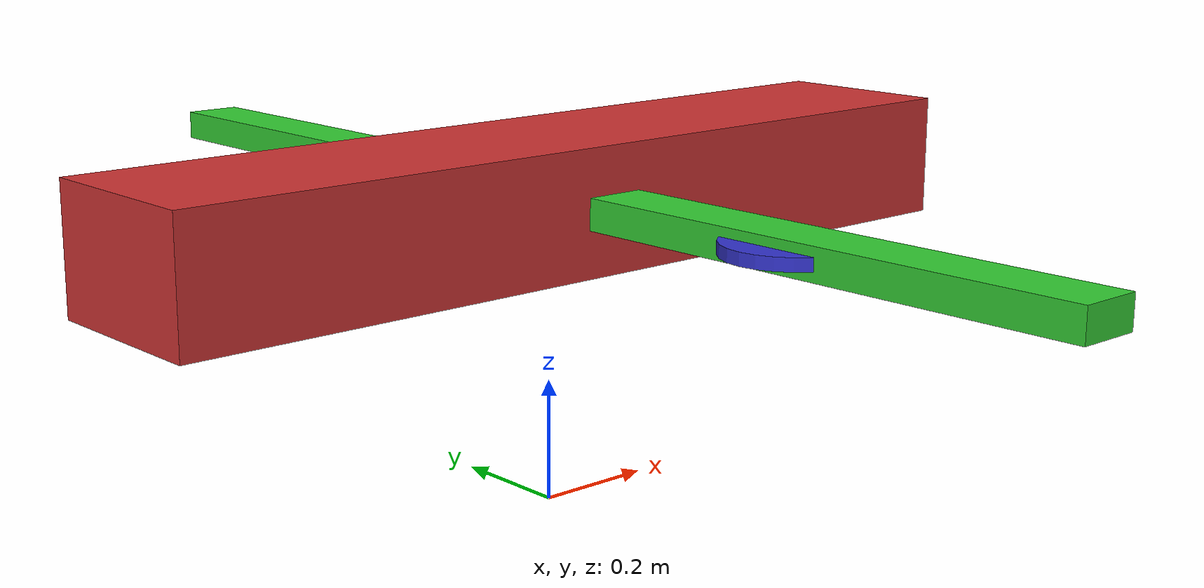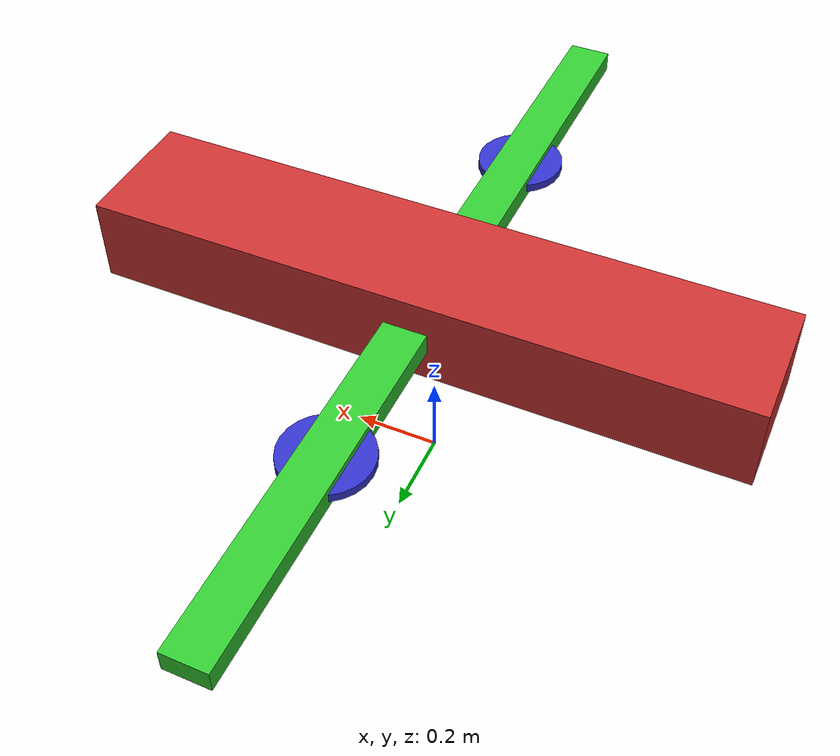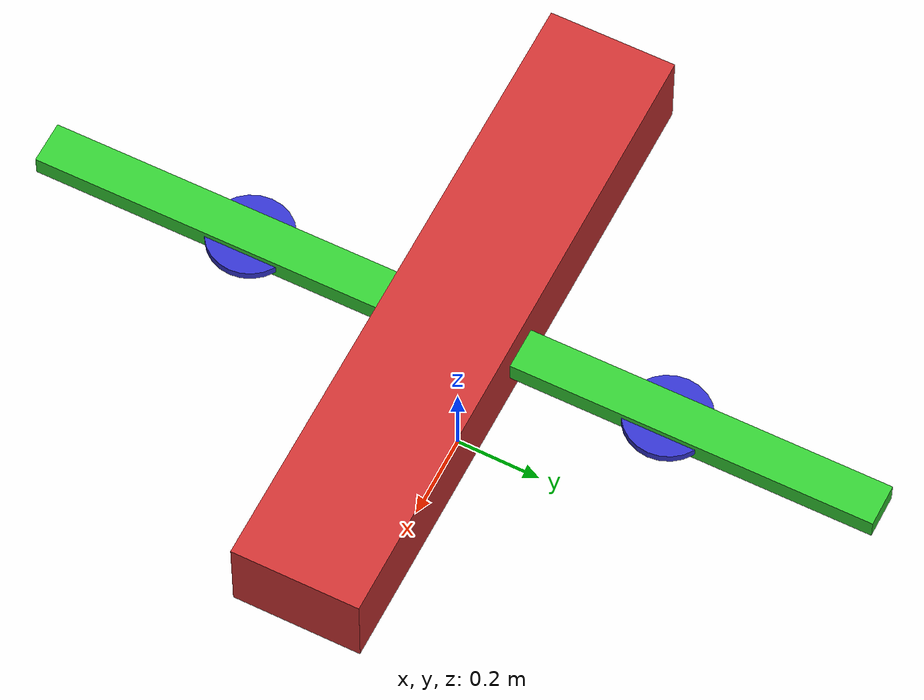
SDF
<?xml version="1.0"?>
<sdf version="1.10">
  <model name="my_tiltwing">
    <pose>0 0 0.5 0 0 0</pose>
    <link name="base_link">
      <inertial>
        <mass>5.0</mass>
        <inertia>
          <ixx>0.1</ixx><ixy>0</ixy><ixz>0</ixz>
          <iyy>0.1</iyy><iyz>0</iyz>
          <izz>0.1</izz>
        </inertia>
      </inertial>
      <visual name="fuselage_visual">
        <geometry><box><size>1.5 0.3 0.2</size></box></geometry>
        <material><diffuse>0.8 0.2 0.2 1</diffuse></material>
      </visual>
      <collision name="fuselage_collision">
        <geometry><box><size>1.5 0.3 0.2</size></box></geometry>
      </collision>
    </link>
    <joint name="wing_tilt_joint" type="revolute">
      <parent>base_link</parent>
      <child>wing_link</child>
      <pose>0 0 0.1 0 0 0</pose>
      <axis>
        <xyz>0 1 0</xyz>
        <limit><lower>-1.57</lower><upper>0</upper></limit>
      </axis>
    </joint>
    <link name="wing_link">
      <inertial>
        <mass>1.0</mass>
        <inertia>
          <ixx>0.05</ixx><ixy>0</ixy><ixz>0</ixz>
          <iyy>0.05</iyy><iyz>0</iyz>
          <izz>0.05</izz>
        </inertia>
      </inertial>
      <visual name="wing_visual">
        <geometry><box><size>0.1 2 0.05</size></box></geometry>
        <material><diffuse>0.2 0.8 0.2 1</diffuse></material>
      </visual>
      <collision name="wing_collision">
        <geometry><box><size>0.1 2 0.05</size></box></geometry>
      </collision>
    </link>
    <link name="prop1_link">
      <pose>0 0.5 0 0 0 0</pose>
      <inertial>
        <mass>0.1</mass>
        <inertia><ixx>0.001</ixx><iyy>0.001</iyy><izz>0.001</izz></inertia>
      </inertial>
      <visual name="prop1_visual">
        <geometry><cylinder><radius>0.1</radius><length>0.02</length></cylinder></geometry>
        <material><diffuse>0.2 0.2 0.8 1</diffuse></material>
      </visual>
      <collision name="prop1_collision">
        <geometry><cylinder><radius>0.1</radius><length>0.02</length></cylinder></geometry>
      </collision>
    </link>
    <joint name="prop1_joint" type="revolute">
      <parent>wing_link</parent>
      <child>prop1_link</child>
      <axis><xyz>0 0 1</xyz></axis>
    </joint>
    <plugin name="motor1" filename="gz-sim8-motor-model-system">
      <jointName>prop1_joint</jointName>
      <turnDirection>ccw</turnDirection>
      <motorConstant>0.01</motorConstant>
      <commandTopic>motor1/command</commandTopic>
    </plugin>
    <link name="prop2_link">
      <pose>0 -0.5 0 0 0 0</pose>
      <inertial>
        <mass>0.1</mass>
        <inertia><ixx>0.001</ixx><iyy>0.001</iyy><izz>0.001</izz></inertia>
      </inertial>
      <visual name="prop2_visual">
        <geometry><cylinder><radius>0.1</radius><length>0.02</length></cylinder></geometry>
        <material><diffuse>0.2 0.2 0.8 1</diffuse></material>
      </visual>
      <collision name="prop2_collision">
        <geometry><cylinder><radius>0.1</radius><length>0.02</length></cylinder></geometry>
      </collision>
    </link>
    <joint name="prop2_joint" type="revolute">
      <parent>wing_link</parent>
      <child>prop2_link</child>
      <axis><xyz>0 0 1</xyz></axis>
    </joint>
    <plugin name="motor2" filename="gz-sim8-motor-model-system">
      <jointName>prop2_joint</jointName>
      <turnDirection>cw</turnDirection>
      <motorConstant>0.01</motorConstant>
      <commandTopic>motor2/command</commandTopic>
    </plugin>
    <link name="imu_link">
      <pose>0 0 0 0 0 0</pose>
      <sensor name="imu_sensor" type="imu">
        <plugin name="imu_plugin" filename="gz-sim8-imu-system"/>
      </sensor>
    </link>
    <plugin name="lift_drag" filename="gz-sim8-lift-drag-system">
      <a0>0.1</a0>
      <cla>0.1</cla>
      <cla_stall>-0.5</cla_stall>
      <alpha_stall>0.4</alpha_stall>
    </plugin>
    <plugin name="ardupilot_plugin" filename="libArduPilotPlugin.so">
      <modelName>my_tiltwing</modelName>
      <fdm_addr>127.0.0.1</fdm_addr>
      <fdm_port_in>9002</fdm_port_in>
      <fdm_port_out>9003</fdm_port_out>
      <imuName>imu_link/imu_sensor</imuName>
      <control channel="0">
        <type>ATTITUDE</type>
        <jointName>wing_tilt_joint</jointName>
        <multiplier>1</multiplier>
        <controlID>0</controlID>
      </control>
    </plugin>
  </model>
</sdf>
